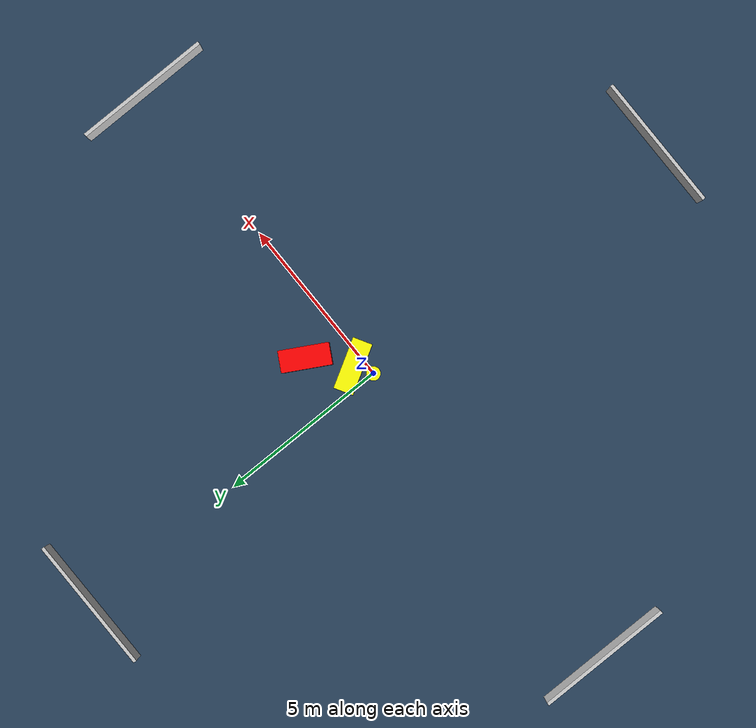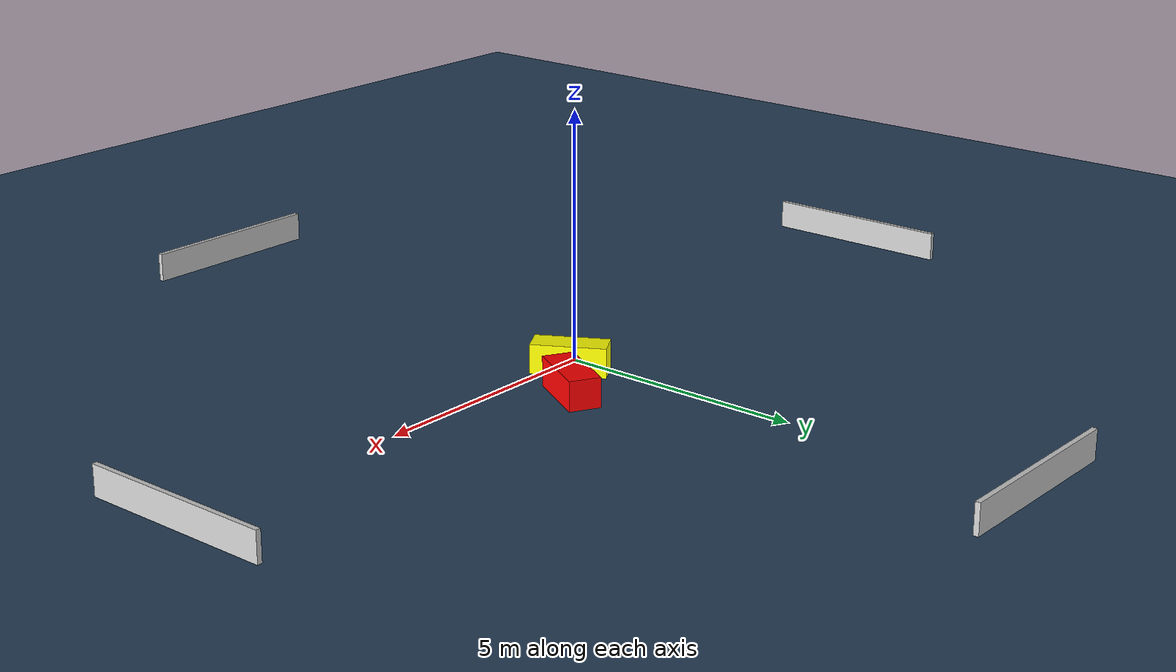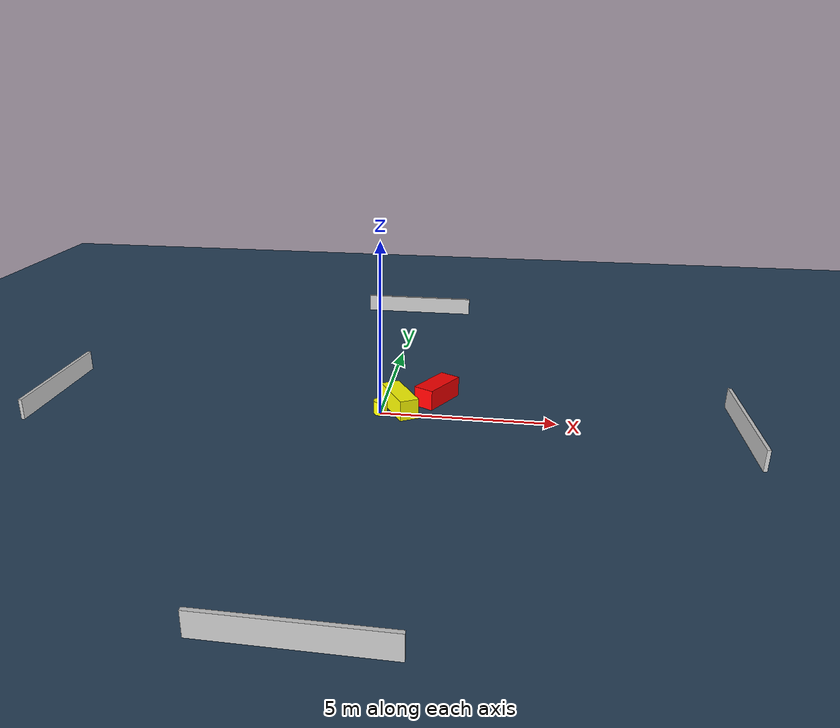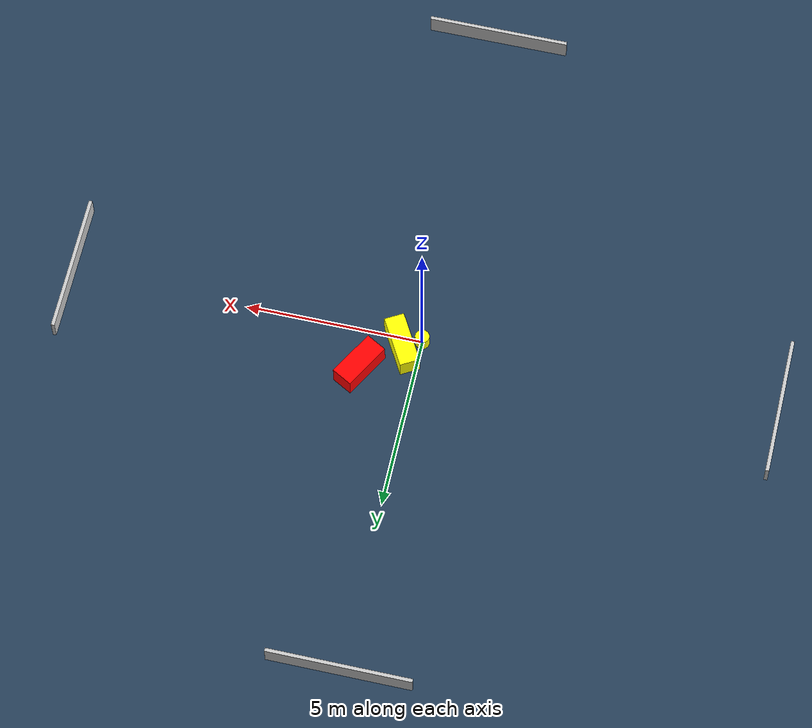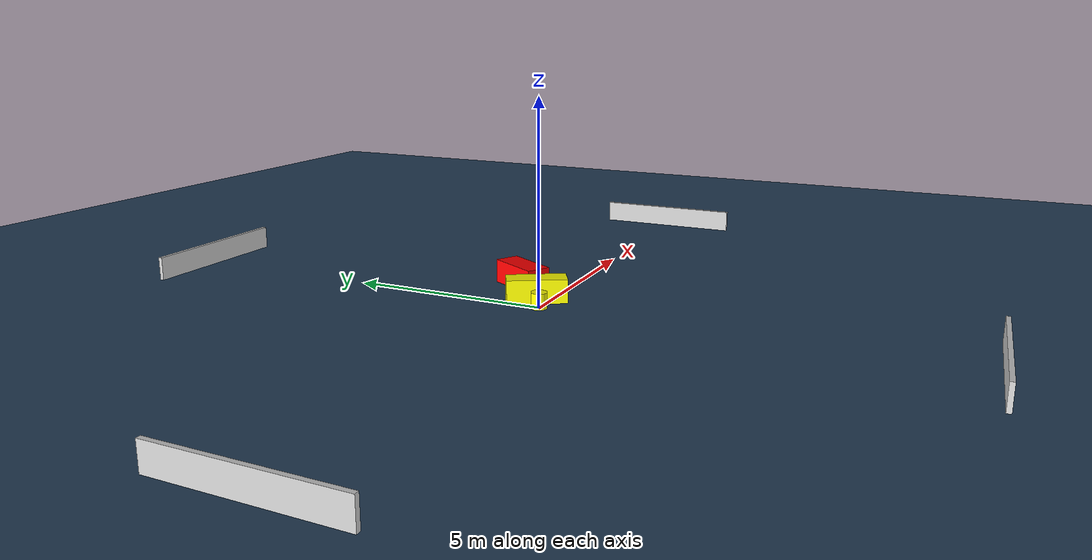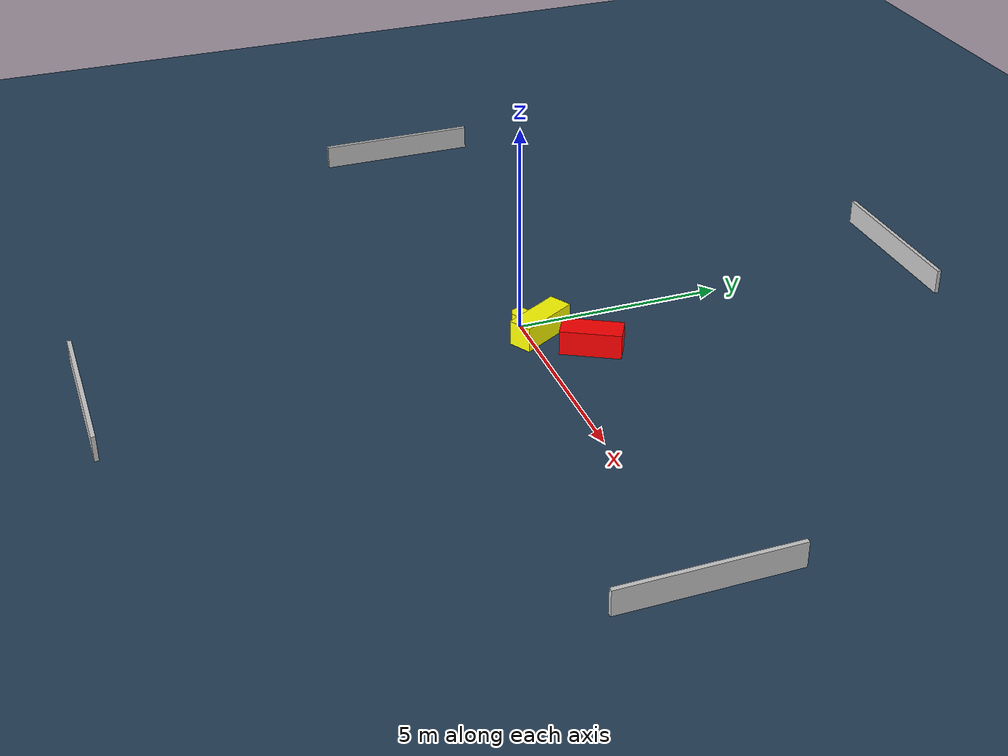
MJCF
<?xml version="1.0" ?>
<mujoco model="generated_environment">
  <option timestep="0.01" integrator="RK4" cone="elliptic"/>
  <default>
    <geom density="1"/>
  </default>
  <asset>
    <texture builtin="gradient" height="3072" name="skybox" rgb1="0.3 0.5 0.7" rgb2="0 0 0" type="skybox" width="512"/>
    <texture builtin="checker" height="300" name="groundplane" rgb1="0.2 0.3 0.4" rgb2="0.1 0.2 0.3" type="2d" width="300"/>
    <material name="groundplane" reflectance="0.2" texrepeat="5 5" texture="groundplane"/>
  </asset>
  <worldbody>
    <light dir="0 0 -1" directional="true" pos="0 0 1.5"/>
    <geom condim="3" friction="0.5 0.005 0.001" material="groundplane" name="floor" pos="0 0 0" size="0 0 0.05" type="plane"/>
    <body name="walls">
      <geom name="wall_1" condim="4" pos="-10.0 0.0 0.3" rgba="0.800000011920929 0.800000011920929 0.800000011920929 1.0" size="0.05 2.0 0.3" type="box"/>
      <geom name="wall_2" condim="4" pos="10.0 0.0 0.3" rgba="0.800000011920929 0.800000011920929 0.800000011920929 1.0" size="0.05 2.0 0.3" type="box"/>
      <geom name="wall_3" condim="4" pos="0.0 -10.0 0.3" rgba="0.800000011920929 0.800000011920929 0.800000011920929 1.0" size="2.0 0.05 0.3" type="box"/>
      <geom name="wall_4" condim="4" pos="0.0 10.0 0.3" rgba="0.800000011920929 0.800000011920929 0.800000011920929 1.0" size="2.0 0.05 0.3" type="box"/>
    </body>
    <body name="robot">
      <joint name="joint_x" type="slide" pos="0 0 0" axis="1 0 0"/>
      <joint name="joint_y" type="slide" pos="0 0 0" axis="0 1 0"/>
      <geom name="robot" type="cylinder" pos="0.0 0.0 0.2" size="0.2 0.2 0.0" mass="5.0" friction="1.0 0.005 0.0001" condim="4" rgba="1.0 1.0 0.0 1.0"/>
    </body>
    <body name="obstacle_1_movable">
      <geom name="obstacle_1_movable" condim="4" pos="0.5069588867286347 0.30584758928917805 0.3" euler="0 0 299.82269059527243" friction="0.0 0.005 0.001" rgba="1.0 1.0 0.0 1.0" size="0.7435875593404946 0.2830026467634316 0.3" type="box" mass="0.1"/>
      <joint type="free"/>
    </body>
    <body name="obstacle_2_static">
      <geom name="obstacle_2_static" condim="4" pos="1.5145191775225801 1.1743872328383709 0.3" euler="0 0 150.81944752197256" friction="0.0 0.005 0.001" rgba="1.0 0.0 0.0 1.0" size="0.31203514087653855 0.7129221495567459 0.3" type="box"/>
    </body>
  </worldbody>
  <actuator>
    <motor name="actuator_x" joint="joint_x" gear="1" ctrlrange="-1 1"/>
    <motor name="actuator_y" joint="joint_y" gear="1" ctrlrange="-1 1"/>
  </actuator>
</mujoco>
